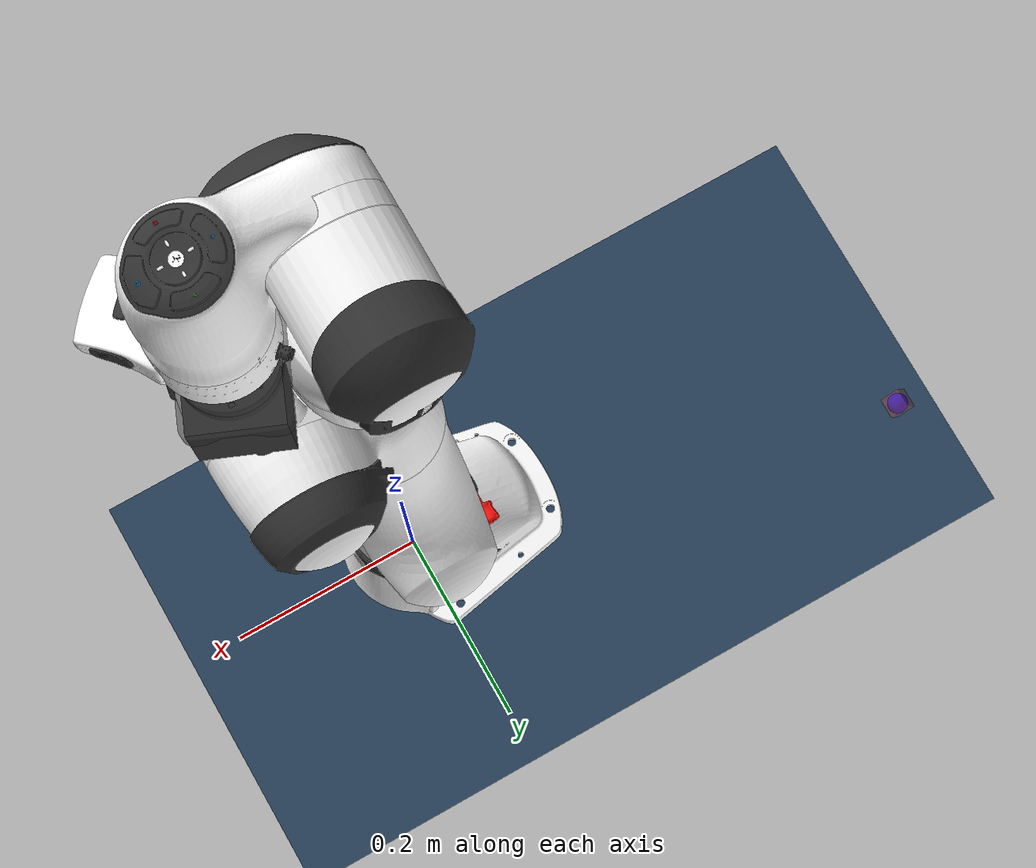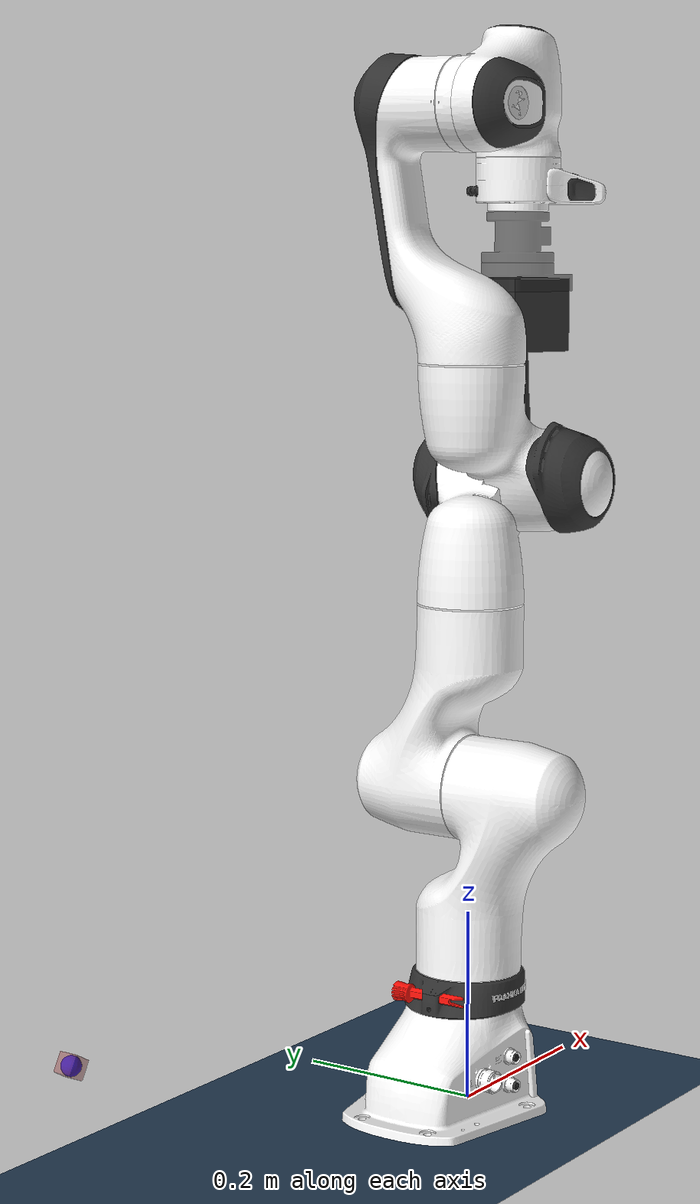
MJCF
<mujoco model="fr3 scene">
  <include file="sensor_assets.xml"/>
  <include file="fr3_joint_actuator.xml"/>

  <statistic center="0.2 0 0.4" extent=".8"/>

  <visual>
    <headlight diffuse="0.6 0.6 0.6" ambient="0.3 0.3 0.3" specular="0 0 0"/>
    <rgba haze="0.15 0.25 0.35 1"/>
    <global azimuth="-150" elevation="-5"/>
  </visual>

  <asset>
    <texture type="skybox" builtin="gradient" rgb1="0.3 0.5 0.7" rgb2="0 0 0" width="512" height="3072"/>
    <texture type="2d" name="groundplane" builtin="checker" mark="edge" rgb1="0.2 0.3 0.4" rgb2="0.1 0.2 0.3"
      markrgb="0.8 0.8 0.8" width="300" height="300"/>
    <material name="groundplane" texture="groundplane" texuniform="true" texrepeat="5 5" reflectance="0.2"/>
  </asset>

  <worldbody>
    <light pos="0 0 1.5" dir="0 0 -1" directional="true"/>
    <geom name="floor" size="0 0 0.05" type="plane" material="groundplane"/>
    <camera name="closeup" pos="1 0.6 .45" xyaxes="-1 .8 0 0 -.15 0.5" fovy="57"/>
    <body name="target" pos="-0.470852 0.139243 0.136262" quat="-0.258819 0 0.9659258 0">
      <geom type="box" size=".01 .01 .01" contype="0" conaffinity="0" rgba=".6 .3 .3 .5"/>
      <site name = "target_site" type="sphere" size="0.01" rgba="0 0 1 1" group="1"/>
    </body>
  </worldbody>
</mujoco>

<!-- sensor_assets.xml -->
<mujoco model="sensor_assets">
    <asset>
        <material name="PLA_black" rgba="0.8 0.8 0.8 1"/>
        <mesh file="../assets/Assembly_Sensor_V2_2.STL" name="sensor_ee_2" scale="0.001 0.001 0.001"/>
        <mesh file="../assets/Platte_SensorModel.STL" name="Verbindung_Kniemodell" scale="0.001 0.001 0.001"/>
    </asset>
</mujoco>

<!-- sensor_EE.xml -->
<mujoco model="sensor_EE">
    <!-- Body Sensor -->
    <body name="plate_RobotSensor" pos="0 0 0.107" quat="0.8314696 0 0 -0.5555702" >
        <inertial pos="0.00064 0.0015 0.026" mass="0.1705"
                xyaxes="0.36 0.93 -0.03 -0.93 0.37 0.007"
                diaginertia="59.960e-06 68.065e-06 68.942e-06" />
        <geom class="visual" mesh="sensor_ee_2" quat="0.9807853 0 0 0.1950903" type="mesh" rgba="0.2 0.2 0.2 0.5"/>
<!-- quat="0.9238795 0 0 -0.3826834"  quat="0.9807853 0 0 0.1950903" quat="0.7071068 0.7071068 0.0 0.0"  -->
        <!-- Kugelgelenk -->
        <body name="Verbindung_Kniemodell" pos="0.0 0.0 0.052">
            <geom class="visual" mesh="Verbindung_Kniemodell" pos="0.0 0.0 0.016" quat="0.7071068 0.7071068 0.0 0.0" type="mesh" rgba="0.2 0.2 0.2 0.5"/>
            <site name="attachment_site"  pos="0.0 0.0 0.220" size="0.015" rgba="0 1 1 1" group="1"/>
            <body name="femur" pos="0.0 0.0 0.0">
                <geom class="visual" mesh="femur_block_mesh" pos="0.043 -0.055 0.016" quat="0.7071068 0 0 0.7071068" type="mesh" material="black"/>
            </body>
        </body>
    </body>
</mujoco>

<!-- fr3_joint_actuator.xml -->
<mujoco model="fr3">
  <compiler angle="radian" meshdir="assets"/>

  <option integrator="implicitfast"/>

  <default>
    <default class="fr3">
      <joint armature="0.1" damping="1"/>
      <position inheritrange="1"/>
      <default class="visual">
        <geom type="mesh" group="2" contype="0" conaffinity="0"/>
      </default>
      <default class="collision">
        <geom type="mesh" group="3" mass="0" density="0"/>
        <default class="fingertip_pad_collision_1">
          <geom type="box" size="0.0085 0.004 0.0085" pos="0 0.0055 0.0445"/>
        </default>
        <default class="fingertip_pad_collision_2">
          <geom type="box" size="0.003 0.002 0.003" pos="0.0055 0.002 0.05"/>
        </default>
        <default class="fingertip_pad_collision_3">
          <geom type="box" size="0.003 0.002 0.003" pos="-0.0055 0.002 0.05"/>
        </default>
        <default class="fingertip_pad_collision_4">
          <geom type="box" size="0.003 0.002 0.0035" pos="0.0055 0.002 0.0395"/>
        </default>
        <default class="fingertip_pad_collision_5">
          <geom type="box" size="0.003 0.002 0.0035" pos="-0.0055 0.002 0.0395"/>
        </default>
      </default>
      <site size="0.001" rgba="0.5 0.5 0.5 0.3" group="4"/>
    </default>
  </default>

  <asset>
    <material name="black" rgba=".2 .2 .2 1"/>
    <material name="white" rgba="1 1 1 1"/>
    <material name="off_white" rgba="0.901961 0.921569 0.929412 1"/>
    <material name="red" rgba="1 0.072272 0.039546 1"/>
    <material name="gray" rgba="0.863156 0.863156 0.863157 1"/>
    <material name="bone" rgba="0.27 0.353 0.392 1"/>
    <material name="light_blue" rgba="0.039216 0.541176 0.780392 1"/>
    <material name="button_green" rgba="0.102241 0.571125 0.102242 1"/>
    <material name="button_red" rgba="0.520996 0.008023 0.013702 1"/>
    <material name="button_blue" rgba="0.024157 0.445201 0.737911 1"/>

    <mesh file="link0_0.obj"/>
    <mesh file="link0_1.obj"/>
    <mesh file="link0_2.obj"/>
    <mesh file="link0_3.obj"/>
    <mesh file="link0_4.obj"/>
    <mesh file="link0_5.obj"/>
    <mesh file="link0_6.obj"/>
    <mesh file="link1.obj"/>
    <mesh file="link2.obj"/>
    <mesh file="link3_0.obj"/>
    <mesh file="link3_1.obj"/>
    <mesh file="link4_0.obj"/>
    <mesh file="link4_1.obj"/>
    <mesh file="link5_0.obj"/>
    <mesh file="link5_1.obj"/>
    <mesh file="link5_2.obj"/>
    <mesh file="link6_0.obj"/>
    <mesh file="link6_1.obj"/>
    <mesh file="link6_2.obj"/>
    <mesh file="link6_3.obj"/>
    <mesh file="link6_4.obj"/>
    <mesh file="link6_5.obj"/>
    <mesh file="link6_6.obj"/>
    <mesh file="link6_7.obj"/>
    <mesh file="link7_0.obj"/>
    <mesh file="link7_1.obj"/>
    <mesh file="link7_2.obj"/>
    <mesh file="link7_3.obj"/>
    <mesh file="hand_0.obj"/>
    <mesh file="hand_1.obj"/>
    <mesh file="hand_2.obj"/>
    <mesh file="hand_3.obj"/>
    <mesh file="hand_4.obj"/>
    <mesh file="finger_0.obj"/>
    <mesh file="finger_1.obj"/>

    <mesh name="tibia_mesh" file="tibia.stl" scale="0.001 0.001 0.001"/>
    <mesh name="femur_mesh" file="femur.stl" scale="0.001 0.001 0.001"/>
    <mesh name="femur_block_mesh" file="femur_cut_block.stl" scale="0.001 0.001 0.001"/>

    <mesh name="link0_coll" file="link0.stl"/>
    <mesh name="link1_coll" file="link1.stl"/>
    <mesh name="link2_coll" file="link2.stl"/>
    <mesh name="link3_coll" file="link3.stl"/>
    <mesh name="link4_coll" file="link4.stl"/>
    <mesh name="link5_coll" file="link5.stl"/>
    <mesh name="link6_coll" file="link6.stl"/>
    <mesh name="link7_coll" file="link7.stl"/>
    <mesh name="hand_c" file="hand.stl"/>
  </asset>

  <worldbody>
    <body name="base" childclass="fr3">
    <site name="base_site" rgba="1 0 0 1" size="0.01" group="1"/>
      <body name="fr3_link0">
        <geom mesh="link0_0" material="black" class="visual"/>
        <geom mesh="link0_1" material="white" class="visual"/>
        <geom mesh="link0_2" material="white" class="visual"/>
        <geom mesh="link0_3" material="white" class="visual"/>
        <geom mesh="link0_4" material="white" class="visual"/>
        <geom mesh="link0_5" material="red" class="visual"/>
        <geom mesh="link0_6" material="black" class="visual"/>
        <geom name="fr3_link0_collision" mesh="link0_coll" class="collision"/>
        <body name="fr3_link1" pos="0 0 0.333">
          <inertial pos="4.128e-07 -0.0181251 -0.0386036" quat="0.999901 0.0021545 0.00429041 0.0132325" mass="2.92747"
            diaginertia="0.0186043 0.0181194 0.00538716"/>
          <joint name="joint1" axis="0 0 1" range="-2.7437 2.7437" actuatorfrcrange="-87 87"/>
          <geom name="fr3_link1_collision" class="collision" mesh="link1_coll"/>
          <geom material="white" mesh="link1" class="visual"/>
          <body name="fr3_link2" quat="1 -1 0 0">
            <inertial pos="0.00318289 -0.0743222 0.00881461" quat="0.356855 0.680818 -0.434812 0.469126" mass="2.93554"
              diaginertia="0.0299291 0.0299291 0.0299291"/>
            <joint name="joint2" axis="0 0 1" range="-1.7837 1.7837" actuatorfrcrange="-87 87"/>
            <geom material="white" mesh="link2" class="visual"/>
            <geom name="fr3_link2_collision" class="collision" mesh="link2_coll"/>
            <body name="fr3_link3" pos="0 -0.316 0" quat="1 1 0 0">
              <inertial pos="0.0407016 -0.00482006 -0.0289731" quat="0.950032 -0.148357 0.229935 0.150201" mass="2.2449"
                diaginertia="0.0140109 0.0140109 0.0140109"/>
              <joint name="joint3" axis="0 0 1" range="-2.9007 2.9007" actuatorfrcrange="-87 87"/>
              <geom mesh="link3_0" material="white" class="visual"/>
              <geom mesh="link3_1" material="black" class="visual"/>
              <geom name="fr3_link3_collision" class="collision" mesh="link3_coll"/>
              <body name="fr3_link4" pos="0.0825 0 0" quat="1 1 0 0">
                <inertial pos="-0.0459101 0.0630493 -0.00851879" quat="0.23761 0.892458 -0.00078702 0.383484"
                  mass="2.6156" diaginertia="0.0206104 0.0206104 0.0206104"/>
                <joint name="joint4" axis="0 0 1" range="-3.0421 -0.1518" actuatorfrcrange="-87 87"/>
                <geom mesh="link4_0" material="white" class="visual"/>
                <geom mesh="link4_1" material="black" class="visual"/>
                <geom name="fr3_link4_collision" class="collision" mesh="link4_coll"/>
                <body name="fr3_link5" pos="-0.0825 0.384 0" quat="1 -1 0 0">
                  <inertial pos="-0.00160396 0.0292536 -0.0972966" quat="0.922285 0.098826 0.0982562 -0.360514"
                    mass="2.32712" diaginertia="0.0182879 0.0182879 0.0182879"/>
                  <joint name="joint5" axis="0 0 1" range="-2.8065 2.8065" actuatorfrcrange="-12 12"/>
                  <geom mesh="link5_0" material="white" class="visual"/>
                  <geom mesh="link5_1" material="white" class="visual"/>
                  <geom mesh="link5_2" material="black" class="visual"/>
                  <geom name="fr3_link5_collision" class="collision" mesh="link5_coll"/>
                  <body name="fr3_link6" quat="1 1 0 0">
                    <inertial pos="0.0597131 -0.0410295 -0.0101693" quat="0.593933 0.525442 0.520644 0.316361"
                      mass="1.81704" diaginertia="0.00483538 0.00483538 0.00483538"/>
                    <joint name="joint6" axis="0 0 1" range="0.5445 4.5169" actuatorfrcrange="-12 12"/>
                    <geom mesh="link6_0" material="button_green" class="visual"/>
                    <geom mesh="link6_1" material="white" class="visual"/>
                    <geom mesh="link6_2" material="white" class="visual"/>
                    <geom mesh="link6_3" material="gray" class="visual"/>
                    <geom mesh="link6_4" material="button_red" class="visual"/>
                    <geom mesh="link6_5" material="white" class="visual"/>
                    <geom mesh="link6_6" material="black" class="visual"/>
                    <geom mesh="link6_7" material="button_blue" class="visual"/>
                    <geom name="fr3_link6_collision" class="collision" mesh="link6_coll"/>
                    <body name="fr3_link7" pos="0.088 0 0" quat="1 1 0 0">
                      <inertial pos="0.00452258 0.00862619 -0.0161633" quat="0.120255 0.394761 -0.799132 0.437139"
                        mass="0.627143" diaginertia="3.076e-07 3.076e-07 3.076e-07"/>
                      <joint name="joint7" axis="0 0 1" range="-3.0159 3.0159" actuatorfrcrange="-12 12"/>
                      <geom mesh="link7_0" material="black" class="visual"/>
                      <geom mesh="link7_1" material="white" class="visual"/>
                      <geom mesh="link7_2" material="white" class="visual"/>
                      <geom mesh="link7_3" material="black" class="visual"/>
                      <geom name="fr3_link7_collision" class="collision" mesh="link7_coll"/>
                      <include file="sensor_EE.xml"/>
                    </body>
                  </body>
                </body>
              </body>
            </body>
          </body>
        </body>
      </body>
    </body>
  </worldbody>

  <actuator>
    <position class="fr3" name="joint1" joint="joint1" kp="4500" kv="450"/>
    <position class="fr3" name="joint2" joint="joint2" kp="4500" kv="450"/>
    <position class="fr3" name="joint3" joint="joint3" kp="3500" kv="350"/>
    <position class="fr3" name="joint4" joint="joint4" kp="3500" kv="350"/>
    <position class="fr3" name="joint5" joint="joint5" kp="2000" kv="200"/>
    <position class="fr3" name="joint6" joint="joint6" kp="2000" kv="200"/>
    <position class="fr3" name="joint7" joint="joint7" kp="2000" kv="200"/>
  </actuator>

  <keyframe>
    <key name="home" qpos="-0.117 -0.894  0.111 -2.951  0.051  2.049 -0.532" ctrl="-0.117 -0.894  0.111 -2.951  0.051  2.049 -0.532"/>
  </keyframe>
</mujoco>
